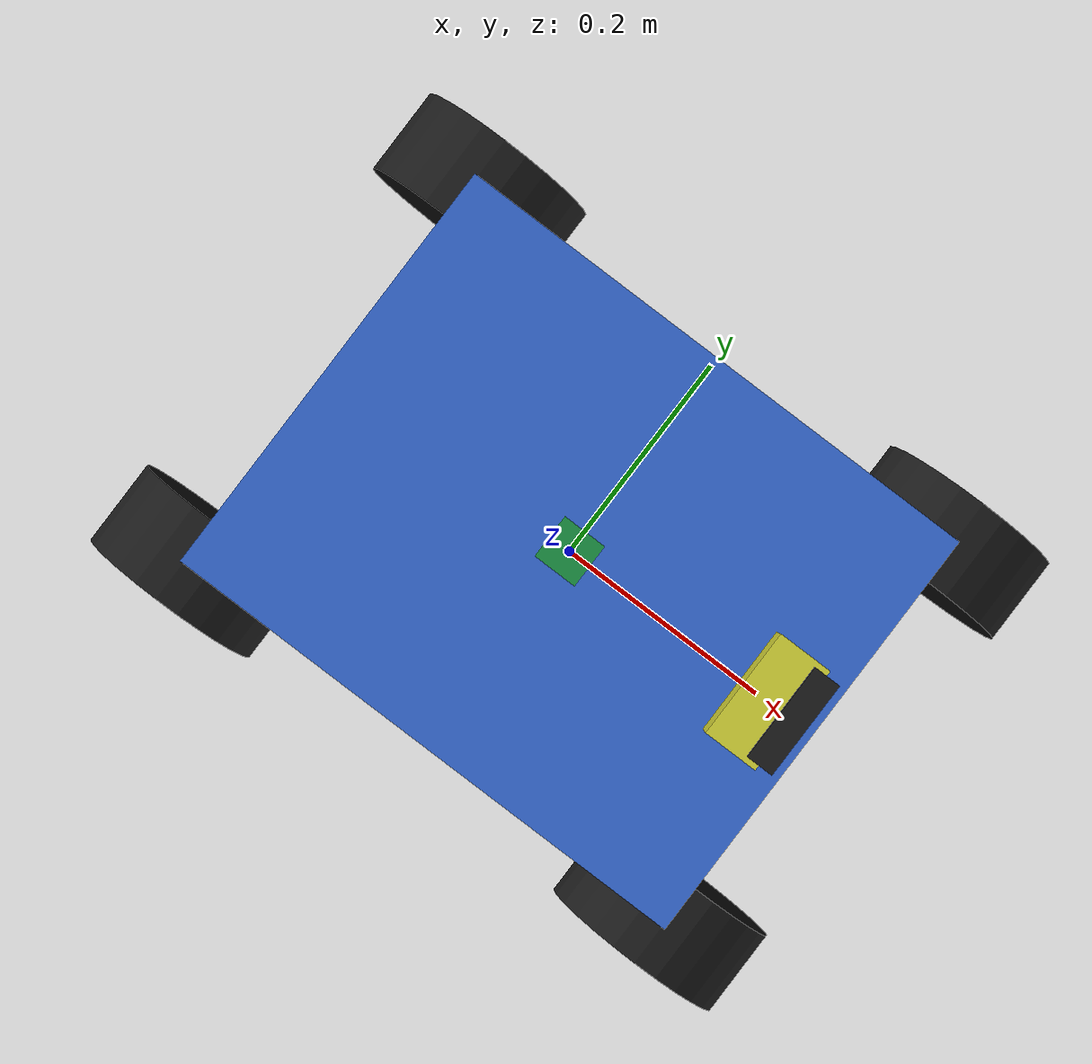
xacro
<?xml version="1.0" ?>
<robot name="rover" xmlns:xacro="http://ros.org/wiki/xacro">

  <xacro:arg name="wheel_radius" default="0.085" />
  <xacro:arg name="wheel_width" default="0.08" />
  <xacro:arg name="body_length" default="0.50" />
  <xacro:arg name="body_width" default="0.40" />
  <xacro:arg name="body_height" default="0.20" />
  <xacro:arg name="track_width" default="0.40" />
  <xacro:arg name="wheel_base" default="0.50" />
  <xacro:arg name="gps_x" default="0.0" />
  <xacro:arg name="gps_y" default="0.0" />
  <xacro:arg name="gps_z" default="0.15" />
  <xacro:property name="wheel_radius" value="$(arg wheel_radius)" />
  <xacro:property name="wheel_width" value="$(arg wheel_width)" />
  <xacro:property name="body_length" value="$(arg body_length)" />
  <xacro:property name="body_width" value="$(arg body_width)" />
  <xacro:property name="body_height" value="$(arg body_height)" />
  <xacro:property name="track_width" value="$(arg track_width)" />
  <xacro:property name="wheel_base" value="$(arg wheel_base)" />
  <xacro:property name="body_mass" value="15.0" />
  <xacro:property name="wheel_mass" value="1.0" />

  <!-- ============== 车体基座（base_link） ============== -->
  <link name="base_link">
    <inertial>
      <origin xyz="0 0 0" rpy="0 0 0" />
      <mass value="${body_mass}" />
      <inertia ixx="${(body_mass/12.0)*(body_width*body_width + body_height*body_height)}"
               iyy="${(body_mass/12.0)*(body_length*body_length + body_height*body_height)}"
               izz="${(body_mass/12.0)*(body_length*body_length + body_width*body_width)}"
               ixy="0" ixz="0" iyz="0" />
    </inertial>

    <visual>
      <origin xyz="0 0 0" rpy="0 0 0" />
      <geometry>
        <box size="${body_length} ${body_width} ${body_height}" />
      </geometry>
      <material name="chassis">
        <color rgba="0.2 0.4 0.8 1.0" />
      </material>
    </visual>

    <collision>
      <origin xyz="0 0 0" rpy="0 0 0" />
      <geometry>
        <box size="${body_length} ${body_width} ${body_height}" />
      </geometry>
    </collision>
  </link>

  <!-- ============== 传感器支架（朝前） ============== -->
  <link name="sensor_mount">
    <inertial>
      <origin xyz="0 0 0" rpy="0 0 0" />
      <mass value="0.1" />
      <inertia ixx="0.001" iyy="0.001" izz="0.001" ixy="0" ixz="0" iyz="0" />
    </inertial>
    <visual>
      <origin xyz="0 0 0" rpy="0 0 0" />
      <geometry>
        <box size="0.05 0.10 0.05" />
      </geometry>
      <material name="sensor_mat">
        <color rgba="0.8 0.8 0.2 1.0" />
      </material>
    </visual>
    <collision>
      <origin xyz="0 0 0" rpy="0 0 0" />
      <geometry>
        <box size="0.05 0.10 0.05" />
      </geometry>
    </collision>
  </link>

  <joint name="sensor_mount_joint" type="fixed">
    <parent link="base_link" />
    <child link="sensor_mount" />
    <origin xyz="${body_length/2 - 0.05} 0 ${body_height/2 + 0.025}" rpy="0 0 0" />
  </joint>

  <!-- ============== D435i 相机模型 ============== -->
  <link name="d435i_link">
    <inertial>
      <origin xyz="0 0 0" rpy="0 0 0" />
      <mass value="0.072" />
      <inertia ixx="0.0001" iyy="0.0001" izz="0.0001" ixy="0" ixz="0" iyz="0" />
    </inertial>
    <visual>
      <origin xyz="0 0 0" rpy="0 0 0" />
      <geometry>
        <box size="0.025 0.090 0.025" />
      </geometry>
      <material name="d435i_mat">
        <color rgba="0.1 0.1 0.1 1.0" />
      </material>
    </visual>
    <collision>
      <origin xyz="0 0 0" rpy="0 0 0" />
      <geometry>
        <box size="0.025 0.090 0.025" />
      </geometry>
    </collision>
  </link>

  <joint name="d435i_joint" type="fixed">
    <parent link="sensor_mount" />
    <child link="d435i_link" />
    <origin xyz="0.025 0 0.02" rpy="0 0 0" />
  </joint>

  <!-- GPS 天线。位置由 rover_geometry.yaml 传入，Pixhawk 上的模块。 -->
  <link name="gps_link">
    <inertial>
      <origin xyz="0 0 0" rpy="0 0 0" />
      <mass value="0.05" />
      <inertia ixx="0.00001" iyy="0.00001" izz="0.00001" ixy="0" ixz="0" iyz="0" />
    </inertial>
    <visual>
      <origin xyz="0 0 0" rpy="0 0 0" />
      <geometry>
        <box size="0.04 0.04 0.015" />
      </geometry>
      <material name="gps_mat">
        <color rgba="0.1 0.55 0.25 1.0" />
      </material>
    </visual>
  </link>

  <joint name="gps_joint" type="fixed">
    <parent link="base_link" />
    <child link="gps_link" />
    <origin xyz="$(arg gps_x) $(arg gps_y) $(arg gps_z)" rpy="0 0 0" />
  </joint>

  <!-- ============== 4 个轮子宏 ============== -->
  <xacro:macro name="wheel_link" params="prefix x y">
    <link name="${prefix}_wheel">
      <inertial>
        <origin xyz="0 0 0" rpy="0 0 0" />
        <mass value="${wheel_mass}" />
        <inertia ixx="${0.5*wheel_mass*wheel_radius*wheel_radius}"
                 iyy="${0.5*wheel_mass*wheel_radius*wheel_radius}"
                 izz="${0.5*wheel_mass*wheel_radius*wheel_radius}"
                 ixy="0" ixz="0" iyz="0" />
      </inertial>
      <visual>
        <origin xyz="0 0 0" rpy="${pi/2} 0 0" />
        <geometry>
          <cylinder radius="${wheel_radius}" length="${wheel_width}" />
        </geometry>
        <material name="wheel_mat">
          <color rgba="0.1 0.1 0.1 1.0" />
        </material>
      </visual>
      <collision>
        <origin xyz="0 0 0" rpy="${pi/2} 0 0" />
        <geometry>
          <cylinder radius="${wheel_radius}" length="${wheel_width}" />
        </geometry>
      </collision>
    </link>

    <joint name="${prefix}_wheel_joint" type="continuous">
      <parent link="base_link" />
      <child link="${prefix}_wheel" />
      <origin xyz="${x} ${y} ${-body_height/2 + wheel_radius}" rpy="0 0 0" />
      <axis xyz="0 1 0" />
    </joint>
  </xacro:macro>

  <!-- 调用宏：4 个轮子（左前、左后、右前、右后）-->
  <xacro:wheel_link prefix="lf" x="${wheel_base/2}"  y="${track_width/2}" />
  <xacro:wheel_link prefix="lr" x="${-wheel_base/2}" y="${track_width/2}" />
  <xacro:wheel_link prefix="rf" x="${wheel_base/2}"  y="${-track_width/2}" />
  <xacro:wheel_link prefix="rr" x="${-wheel_base/2}" y="${-track_width/2}" />

  <!-- ============== Gazebo 颜色插件（如使用 Gazebo 仿真，可启用）============== -->

</robot>
